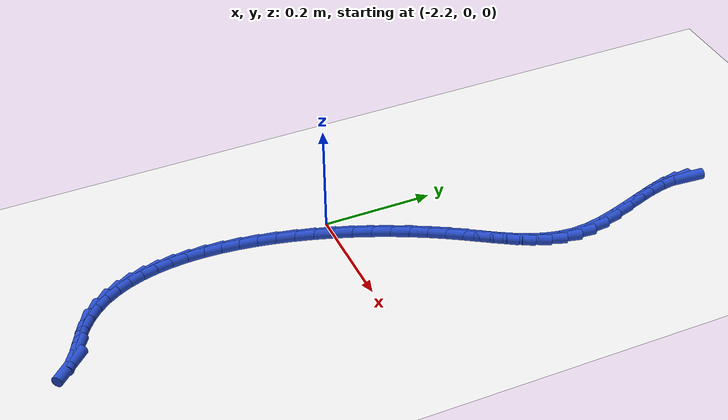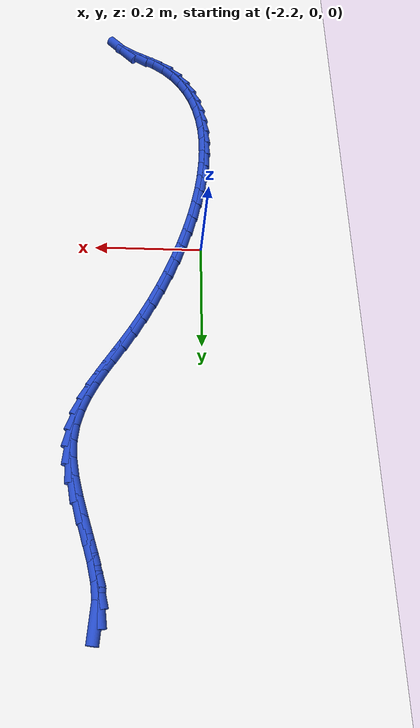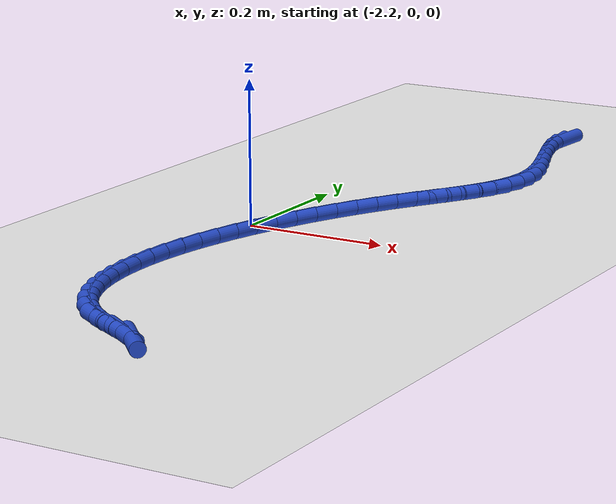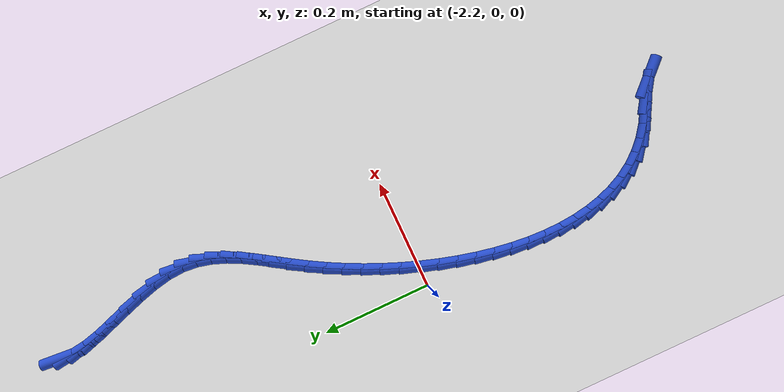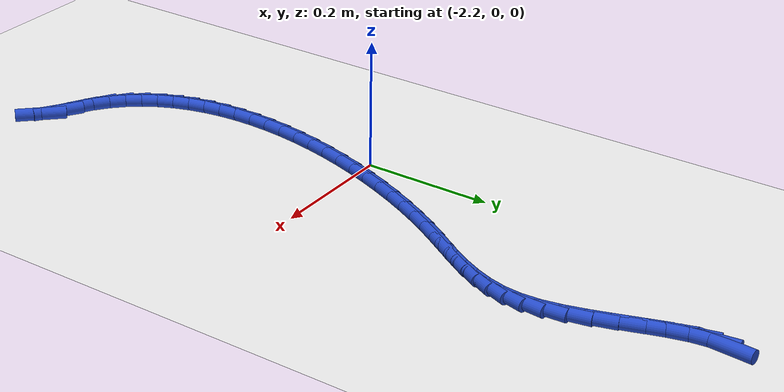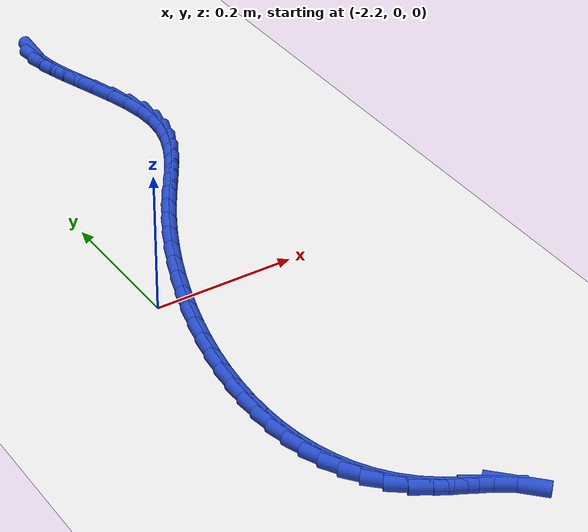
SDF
<sdf version="1.6">
 <world name="default">
  <model name="ground_plane">
   <static>1</static>
   <link name="link">
    <collision name="collision">
     <geometry><plane><normal>0 0 1</normal><size>100 100</size></plane></geometry>
     <surface><friction><ode><mu>100</mu><mu2>50</mu2></ode></friction></surface>
    </collision>
    <visual name="visual">
     <cast_shadows>0</cast_shadows>
     <geometry><plane><normal>0 0 1</normal><size>100 100</size></plane></geometry>
     <material>
      <script><uri>file://media/materials/scripts/gazebo.material</uri><name>Gazebo/WhiteGlow</name></script>
     </material>
    </visual>
   </link>
  </model>
  <model name="line">
   <link name="link_108">
    <pose>-2.0397031572639728 0.6430869934827159 0.01 0 1.57 1.4878936288421638</pose>
    <collision name="collision">
     <geometry><cylinder><radius>0.01</radius><length>0.08</length></cylinder></geometry>
    </collision>
    <visual name="visual">
     <material>
      <script><name>Gazebo/Blue</name><uri>file://media/materials/scripts/gazebo.material</uri></script>
     </material>
     <geometry><cylinder><radius>0.01</radius><length>0.08</length></cylinder></geometry>
    </visual>
   </link>
   <link name="link_109">
    <pose>-2.0415366161967414 0.6210218896333547 0.01 0 1.57 -1.440338103006895</pose>
    <collision name="collision">
     <geometry><cylinder><radius>0.01</radius><length>0.08</length></cylinder></geometry>
    </collision>
    <visual name="visual">
     <material>
      <script><name>Gazebo/Blue</name><uri>file://media/materials/scripts/gazebo.material</uri></script>
     </material>
     <geometry><cylinder><radius>0.01</radius><length>0.08</length></cylinder></geometry>
    </visual>
   </link>
   <link name="link_110">
    <pose>-2.0381831503874146 0.595462599532689 0.01 0 1.57 -1.3223776530969704</pose>
    <collision name="collision">
     <geometry><cylinder><radius>0.01</radius><length>0.08</length></cylinder></geometry>
    </collision>
    <visual name="visual">
     <material>
      <script><name>Gazebo/Blue</name><uri>file://media/materials/scripts/gazebo.material</uri></script>
     </material>
     <geometry><cylinder><radius>0.01</radius><length>0.08</length></cylinder></geometry>
    </visual>
   </link>
   <link name="link_111">
    <pose>-2.0310013892306817 0.5671498465524457 0.01 0 1.57 -1.2626714789542208</pose>
    <collision name="collision">
     <geometry><cylinder><radius>0.01</radius><length>0.08</length></cylinder></geometry>
    </collision>
    <visual name="visual">
     <material>
      <script><name>Gazebo/Blue</name><uri>file://media/materials/scripts/gazebo.material</uri></script>
     </material>
     <geometry><cylinder><radius>0.01</radius><length>0.08</length></cylinder></geometry>
    </visual>
   </link>
   <link name="link_112">
    <pose>-2.0213499621212323 0.5368243540643508 0.01 0 1.57 -1.2425101026168786</pose>
    <collision name="collision">
     <geometry><cylinder><radius>0.01</radius><length>0.08</length></cylinder></geometry>
    </collision>
    <visual name="visual">
     <material>
      <script><name>Gazebo/Blue</name><uri>file://media/materials/scripts/gazebo.material</uri></script>
     </material>
     <geometry><cylinder><radius>0.01</radius><length>0.08</length></cylinder></geometry>
    </visual>
   </link>
   <link name="link_113">
    <pose>-2.0105874984537557 0.5052268454401305 0.01 0 1.57 -1.2545104694375953</pose>
    <collision name="collision">
     <geometry><cylinder><radius>0.01</radius><length>0.08</length></cylinder></geometry>
    </collision>
    <visual name="visual">
     <material>
      <script><name>Gazebo/Blue</name><uri>file://media/materials/scripts/gazebo.material</uri></script>
     </material>
     <geometry><cylinder><radius>0.01</radius><length>0.08</length></cylinder></geometry>
    </visual>
   </link>
   <link name="link_114">
    <pose>-2.0000726276229432 0.47309804405151124 0.01 0 1.57 -1.2986237771977194</pose>
    <collision name="collision">
     <geometry><cylinder><radius>0.01</radius><length>0.08</length></cylinder></geometry>
    </collision>
    <visual name="visual">
     <material>
      <script><name>Gazebo/Blue</name><uri>file://media/materials/scripts/gazebo.material</uri></script>
     </material>
     <geometry><cylinder><radius>0.01</radius><length>0.08</length></cylinder></geometry>
    </visual>
   </link>
   <link name="link_115">
    <pose>-1.9911639790234816 0.44117867327021854 0.01 0 1.57 -1.3811761737822779</pose>
    <collision name="collision">
     <geometry><cylinder><radius>0.01</radius><length>0.08</length></cylinder></geometry>
    </collision>
    <visual name="visual">
     <material>
      <script><name>Gazebo/Blue</name><uri>file://media/materials/scripts/gazebo.material</uri></script>
     </material>
     <geometry><cylinder><radius>0.01</radius><length>0.08</length></cylinder></geometry>
    </visual>
   </link>
   <link name="link_116">
    <pose>-1.9852201820500623 0.41020945646797974 0.01 0 1.57 -1.5132806153723208</pose>
    <collision name="collision">
     <geometry><cylinder><radius>0.01</radius><length>0.08</length></cylinder></geometry>
    </collision>
    <visual name="visual">
     <material>
      <script><name>Gazebo/Blue</name><uri>file://media/materials/scripts/gazebo.material</uri></script>
     </material>
     <geometry><cylinder><radius>0.01</radius><length>0.08</length></cylinder></geometry>
    </visual>
   </link>
   <link name="link_117">
    <pose>-1.9835321368784034 0.38089253877591855 0.01 0 1.57 1.4697247426098066</pose>
    <collision name="collision">
     <geometry><cylinder><radius>0.01</radius><length>0.08</length></cylinder></geometry>
    </collision>
    <visual name="visual">
     <material>
      <script><name>Gazebo/Blue</name><uri>file://media/materials/scripts/gazebo.material</uri></script>
     </material>
     <geometry><cylinder><radius>0.01</radius><length>0.08</length></cylinder></geometry>
    </visual>
   </link>
   <link name="link_118">
    <pose>-1.986327986397958 0.35332472383570934 0.01 0 1.57 1.3217589070407898</pose>
    <collision name="collision">
     <geometry><cylinder><radius>0.01</radius><length>0.08</length></cylinder></geometry>
    </collision>
    <visual name="visual">
     <material>
      <script><name>Gazebo/Blue</name><uri>file://media/materials/scripts/gazebo.material</uri></script>
     </material>
     <geometry><cylinder><radius>0.01</radius><length>0.08</length></cylinder></geometry>
    </visual>
   </link>
   <link name="link_119">
    <pose>-1.9929917748650157 0.32712202072714197 0.01 0 1.57 1.197190108018393</pose>
    <collision name="collision">
     <geometry><cylinder><radius>0.01</radius><length>0.08</length></cylinder></geometry>
    </collision>
    <visual name="visual">
     <material>
      <script><name>Gazebo/Blue</name><uri>file://media/materials/scripts/gazebo.material</uri></script>
     </material>
     <geometry><cylinder><radius>0.01</radius><length>0.08</length></cylinder></geometry>
    </visual>
   </link>
   <link name="link_120">
    <pose>-2.0028842777617877 0.30188718474709497 0.01 0 1.57 1.1022988929126163</pose>
    <collision name="collision">
     <geometry><cylinder><radius>0.01</radius><length>0.08</length></cylinder></geometry>
    </collision>
    <visual name="visual">
     <material>
      <script><name>Gazebo/Blue</name><uri>file://media/materials/scripts/gazebo.material</uri></script>
     </material>
     <geometry><cylinder><radius>0.01</radius><length>0.08</length></cylinder></geometry>
    </visual>
   </link>
   <link name="link_121">
    <pose>-2.0153662705704862 0.27722297119244727 0.01 0 1.57 1.0382874243343039</pose>
    <collision name="collision">
     <geometry><cylinder><radius>0.01</radius><length>0.08</length></cylinder></geometry>
    </collision>
    <visual name="visual">
     <material>
      <script><name>Gazebo/Blue</name><uri>file://media/materials/scripts/gazebo.material</uri></script>
     </material>
     <geometry><cylinder><radius>0.01</radius><length>0.08</length></cylinder></geometry>
    </visual>
   </link>
   <link name="link_122">
    <pose>-2.0297985287733233 0.252732135360078 0.01 0 1.57 1.0036133376715461</pose>
    <collision name="collision">
     <geometry><cylinder><radius>0.01</radius><length>0.08</length></cylinder></geometry>
    </collision>
    <visual name="visual">
     <material>
      <script><name>Gazebo/Blue</name><uri>file://media/materials/scripts/gazebo.material</uri></script>
     </material>
     <geometry><cylinder><radius>0.01</radius><length>0.08</length></cylinder></geometry>
    </visual>
   </link>
   <link name="link_123">
    <pose>-2.0455418278525093 0.22801743254686538 0.01 0 1.57 0.9958976511970311</pose>
    <collision name="collision">
     <geometry><cylinder><radius>0.01</radius><length>0.08</length></cylinder></geometry>
    </collision>
    <visual name="visual">
     <material>
      <script><name>Gazebo/Blue</name><uri>file://media/materials/scripts/gazebo.material</uri></script>
     </material>
     <geometry><cylinder><radius>0.01</radius><length>0.08</length></cylinder></geometry>
    </visual>
   </link>
   <link name="link_124">
    <pose>-2.061956943290256 0.2026816180496895 0.01 0 1.57 1.012830841564968</pose>
    <collision name="collision">
     <geometry><cylinder><radius>0.01</radius><length>0.08</length></cylinder></geometry>
    </collision>
    <visual name="visual">
     <material>
      <script><name>Gazebo/Blue</name><uri>file://media/materials/scripts/gazebo.material</uri></script>
     </material>
     <geometry><cylinder><radius>0.01</radius><length>0.08</length></cylinder></geometry>
    </visual>
   </link>
   <link name="link_125">
    <pose>-2.0784049109043625 0.1763277184126395 0.01 0 1.57 1.0466192407323396</pose>
    <collision name="collision">
     <geometry><cylinder><radius>0.01</radius><length>0.08</length></cylinder></geometry>
    </collision>
    <visual name="visual">
     <material>
      <script><name>Gazebo/Blue</name><uri>file://media/materials/scripts/gazebo.material</uri></script>
     </material>
     <geometry><cylinder><radius>0.01</radius><length>0.08</length></cylinder></geometry>
    </visual>
   </link>
   <link name="link_126">
    <pose>-2.094379058951766 0.14869659748242905 0.01 0 1.57 1.0814410365032605</pose>
    <collision name="collision">
     <geometry><cylinder><radius>0.01</radius><length>0.08</length></cylinder></geometry>
    </collision>
    <visual name="visual">
     <material>
      <script><name>Gazebo/Blue</name><uri>file://media/materials/scripts/gazebo.material</uri></script>
     </material>
     <geometry><cylinder><radius>0.01</radius><length>0.08</length></cylinder></geometry>
    </visual>
   </link>
   <link name="link_127">
    <pose>-2.109719870222998 0.11989082416477786 0.01 0 1.57 1.1153758200336379</pose>
    <collision name="collision">
     <geometry><cylinder><radius>0.01</radius><length>0.08</length></cylinder></geometry>
    </collision>
    <visual name="visual">
     <material>
      <script><name>Gazebo/Blue</name><uri>file://media/materials/scripts/gazebo.material</uri></script>
     </material>
     <geometry><cylinder><radius>0.01</radius><length>0.08</length></cylinder></geometry>
    </visual>
   </link>
   <link name="link_128">
    <pose>-2.124324083599219 0.09007158135604049 0.01 0 1.57 1.1489686682380962</pose>
    <collision name="collision">
     <geometry><cylinder><radius>0.01</radius><length>0.08</length></cylinder></geometry>
    </collision>
    <visual name="visual">
     <material>
      <script><name>Gazebo/Blue</name><uri>file://media/materials/scripts/gazebo.material</uri></script>
     </material>
     <geometry><cylinder><radius>0.01</radius><length>0.08</length></cylinder></geometry>
    </visual>
   </link>
   <link name="link_129">
    <pose>-2.138088437961595 0.05940005195257201 0.01 0 1.57 1.1827216518505648</pose>
    <collision name="collision">
     <geometry><cylinder><radius>0.01</radius><length>0.08</length></cylinder></geometry>
    </collision>
    <visual name="visual">
     <material>
      <script><name>Gazebo/Blue</name><uri>file://media/materials/scripts/gazebo.material</uri></script>
     </material>
     <geometry><cylinder><radius>0.01</radius><length>0.08</length></cylinder></geometry>
    </visual>
   </link>
   <link name="link_130">
    <pose>-2.150909672191288 0.028037418850727375 0.01 0 1.57 1.217116890093893</pose>
    <collision name="collision">
     <geometry><cylinder><radius>0.01</radius><length>0.08</length></cylinder></geometry>
    </collision>
    <visual name="visual">
     <material>
      <script><name>Gazebo/Blue</name><uri>file://media/materials/scripts/gazebo.material</uri></script>
     </material>
     <geometry><cylinder><radius>0.01</radius><length>0.08</length></cylinder></geometry>
    </visual>
   </link>
   <link name="link_131">
    <pose>-2.16268452516946 -0.003855135053138438 0.01 0 1.57 1.2526363283092934</pose>
    <collision name="collision">
     <geometry><cylinder><radius>0.01</radius><length>0.08</length></cylinder></geometry>
    </collision>
    <visual name="visual">
     <material>
      <script><name>Gazebo/Blue</name><uri>file://media/materials/scripts/gazebo.material</uri></script>
     </material>
     <geometry><cylinder><radius>0.01</radius><length>0.08</length></cylinder></geometry>
    </visual>
   </link>
   <link name="link_132">
    <pose>-2.173309735777274 -0.03611642686267039 0.01 0 1.57 1.2897796660287975</pose>
    <collision name="collision">
     <geometry><cylinder><radius>0.01</radius><length>0.08</length></cylinder></geometry>
    </collision>
    <visual name="visual">
     <material>
      <script><name>Gazebo/Blue</name><uri>file://media/materials/scripts/gazebo.material</uri></script>
     </material>
     <geometry><cylinder><radius>0.01</radius><length>0.08</length></cylinder></geometry>
    </visual>
   </link>
   <link name="link_133">
    <pose>-2.1826820428958937 -0.06858527368151443 0.01 0 1.57 1.3290814022328998</pose>
    <collision name="collision">
     <geometry><cylinder><radius>0.01</radius><length>0.08</length></cylinder></geometry>
    </collision>
    <visual name="visual">
     <material>
      <script><name>Gazebo/Blue</name><uri>file://media/materials/scripts/gazebo.material</uri></script>
     </material>
     <geometry><cylinder><radius>0.01</radius><length>0.08</length></cylinder></geometry>
    </visual>
   </link>
   <link name="link_134">
    <pose>-2.1906981854064815 -0.1011004926133137 0.01 0 1.57 1.3711275233842775</pose>
    <collision name="collision">
     <geometry><cylinder><radius>0.01</radius><length>0.08</length></cylinder></geometry>
    </collision>
    <visual name="visual">
     <material>
      <script><name>Gazebo/Blue</name><uri>file://media/materials/scripts/gazebo.material</uri></script>
     </material>
     <geometry><cylinder><radius>0.01</radius><length>0.08</length></cylinder></geometry>
    </visual>
   </link>
   <link name="link_135">
    <pose>-2.1972549021901995 -0.13350090076171411 0.01 0 1.57 1.4165718086938301</pose>
    <collision name="collision">
     <geometry><cylinder><radius>0.01</radius><length>0.08</length></cylinder></geometry>
    </collision>
    <visual name="visual">
     <material>
      <script><name>Gazebo/Blue</name><uri>file://media/materials/scripts/gazebo.material</uri></script>
     </material>
     <geometry><cylinder><radius>0.01</radius><length>0.08</length></cylinder></geometry>
    </visual>
   </link>
   <link name="link_136">
    <pose>-2.202248932128212 -0.16562531523036067 0.01 0 1.57 1.4661508898205307</pose>
    <collision name="collision">
     <geometry><cylinder><radius>0.01</radius><length>0.08</length></cylinder></geometry>
    </collision>
    <visual name="visual">
     <material>
      <script><name>Gazebo/Blue</name><uri>file://media/materials/scripts/gazebo.material</uri></script>
     </material>
     <geometry><cylinder><radius>0.01</radius><length>0.08</length></cylinder></geometry>
    </visual>
   </link>
   <link name="link_137">
    <pose>-2.205577014101681 -0.19731255312289844 0.01 0 1.57 1.520695825822472</pose>
    <collision name="collision">
     <geometry><cylinder><radius>0.01</radius><length>0.08</length></cylinder></geometry>
    </collision>
    <visual name="visual">
     <material>
      <script><name>Gazebo/Blue</name><uri>file://media/materials/scripts/gazebo.material</uri></script>
     </material>
     <geometry><cylinder><radius>0.01</radius><length>0.08</length></cylinder></geometry>
    </visual>
   </link>
   <link name="link_138">
    <pose>-2.2071358869917708 -0.22840143154297232 0.01 0 1.57 -1.5604569597629774</pose>
    <collision name="collision">
     <geometry><cylinder><radius>0.01</radius><length>0.08</length></cylinder></geometry>
    </collision>
    <visual name="visual">
     <material>
      <script><name>Gazebo/Blue</name><uri>file://media/materials/scripts/gazebo.material</uri></script>
     </material>
     <geometry><cylinder><radius>0.01</radius><length>0.08</length></cylinder></geometry>
    </visual>
   </link>
   <link name="link_139">
    <pose>-2.206822289679643 -0.2587307675942275 0.01 0 1.57 -1.4931074823712431</pose>
    <collision name="collision">
     <geometry><cylinder><radius>0.01</radius><length>0.08</length></cylinder></geometry>
    </collision>
    <visual name="visual">
     <material>
      <script><name>Gazebo/Blue</name><uri>file://media/materials/scripts/gazebo.material</uri></script>
     </material>
     <geometry><cylinder><radius>0.01</radius><length>0.08</length></cylinder></geometry>
    </visual>
   </link>
   <link name="link_140">
    <pose>-2.2045329610464597 -0.28813937838030956 0.01 0 1.57 -1.417789506370488</pose>
    <collision name="collision">
     <geometry><cylinder><radius>0.01</radius><length>0.08</length></cylinder></geometry>
    </collision>
    <visual name="visual">
     <material>
      <script><name>Gazebo/Blue</name><uri>file://media/materials/scripts/gazebo.material</uri></script>
     </material>
     <geometry><cylinder><radius>0.01</radius><length>0.08</length></cylinder></geometry>
    </visual>
   </link>
   <link name="link_141">
    <pose>-2.2001646399733845 -0.3164660810048619 0.01 0 1.57 -1.3334887747081487</pose>
    <collision name="collision">
     <geometry><cylinder><radius>0.01</radius><length>0.08</length></cylinder></geometry>
    </collision>
    <visual name="visual">
     <material>
      <script><name>Gazebo/Blue</name><uri>file://media/materials/scripts/gazebo.material</uri></script>
     </material>
     <geometry><cylinder><radius>0.01</radius><length>0.08</length></cylinder></geometry>
    </visual>
   </link>
   <link name="link_142">
    <pose>-2.193614065341582 -0.34354969257153045 0.01 0 1.57 -1.2393932164998347</pose>
    <collision name="collision">
     <geometry><cylinder><radius>0.01</radius><length>0.08</length></cylinder></geometry>
    </collision>
    <visual name="visual">
     <material>
      <script><name>Gazebo/Blue</name><uri>file://media/materials/scripts/gazebo.material</uri></script>
     </material>
     <geometry><cylinder><radius>0.01</radius><length>0.08</length></cylinder></geometry>
    </visual>
   </link>
   <link name="link_143">
    <pose>-2.1847779760322132 -0.36922903018396025 0.01 0 1.57 -1.1351326139485813</pose>
    <collision name="collision">
     <geometry><cylinder><radius>0.01</radius><length>0.08</length></cylinder></geometry>
    </collision>
    <visual name="visual">
     <material>
      <script><name>Gazebo/Blue</name><uri>file://media/materials/scripts/gazebo.material</uri></script>
     </material>
     <geometry><cylinder><radius>0.01</radius><length>0.08</length></cylinder></geometry>
    </visual>
   </link>
   <link name="link_144">
    <pose>-2.1735531109264414 -0.3933429109457962 0.01 0 1.57 -1.021083111692221</pose>
    <collision name="collision">
     <geometry><cylinder><radius>0.01</radius><length>0.08</length></cylinder></geometry>
    </collision>
    <visual name="visual">
     <material>
      <script><name>Gazebo/Blue</name><uri>file://media/materials/scripts/gazebo.material</uri></script>
     </material>
     <geometry><cylinder><radius>0.01</radius><length>0.08</length></cylinder></geometry>
    </visual>
   </link>
   <link name="link_145">
    <pose>-2.1598362089054293 -0.41573015196068325 0.01 0 1.57 -0.8986585614307075</pose>
    <collision name="collision">
     <geometry><cylinder><radius>0.01</radius><length>0.08</length></cylinder></geometry>
    </collision>
    <visual name="visual">
     <material>
      <script><name>Gazebo/Blue</name><uri>file://media/materials/scripts/gazebo.material</uri></script>
     </material>
     <geometry><cylinder><radius>0.01</radius><length>0.08</length></cylinder></geometry>
    </visual>
   </link>
   <link name="link_146">
    <pose>-2.1435240088503402 -0.4362295703322666 0.01 0 1.57 -0.7704412210517709</pose>
    <collision name="collision">
     <geometry><cylinder><radius>0.01</radius><length>0.08</length></cylinder></geometry>
    </collision>
    <visual name="visual">
     <material>
      <script><name>Gazebo/Blue</name><uri>file://media/materials/scripts/gazebo.material</uri></script>
     </material>
     <geometry><cylinder><radius>0.01</radius><length>0.08</length></cylinder></geometry>
    </visual>
   </link>
   <link name="link_147">
    <pose>-2.1245132496423373 -0.4546799831641911 0.01 0 1.57 -0.6399941923772516</pose>
    <collision name="collision">
     <geometry><cylinder><radius>0.01</radius><length>0.08</length></cylinder></geometry>
    </collision>
    <visual name="visual">
     <material>
      <script><name>Gazebo/Blue</name><uri>file://media/materials/scripts/gazebo.material</uri></script>
     </material>
     <geometry><cylinder><radius>0.01</radius><length>0.08</length></cylinder></geometry>
    </visual>
   </link>
   <link name="link_148">
    <pose>-2.1027006701625828 -0.4709202075601017 0.01 0 1.57 -0.5199217862065371</pose>
    <collision name="collision">
     <geometry><cylinder><radius>0.01</radius><length>0.08</length></cylinder></geometry>
    </collision>
    <visual name="visual">
     <material>
      <script><name>Gazebo/Blue</name><uri>file://media/materials/scripts/gazebo.material</uri></script>
     </material>
     <geometry><cylinder><radius>0.01</radius><length>0.08</length></cylinder></geometry>
    </visual>
   </link>
   <link name="link_149">
    <pose>-2.0781854746722384 -0.4849541268623484 0.01 0 1.57 -0.48635590580717925</pose>
    <collision name="collision">
     <geometry><cylinder><radius>0.01</radius><length>0.08</length></cylinder></geometry>
    </collision>
    <visual name="visual">
     <material>
      <script><name>Gazebo/Blue</name><uri>file://media/materials/scripts/gazebo.material</uri></script>
     </material>
     <geometry><cylinder><radius>0.01</radius><length>0.08</length></cylinder></geometry>
    </visual>
   </link>
   <link name="link_150">
    <pose>-2.052931865974453 -0.49830612285363596 0.01 0 1.57 -0.5778991033997775</pose>
    <collision name="collision">
     <geometry><cylinder><radius>0.01</radius><length>0.08</length></cylinder></geometry>
    </collision>
    <visual name="visual">
     <material>
      <script><name>Gazebo/Blue</name><uri>file://media/materials/scripts/gazebo.material</uri></script>
     </material>
     <geometry><cylinder><radius>0.01</radius><length>0.08</length></cylinder></geometry>
    </visual>
   </link>
   <link name="link_151">
    <pose>-2.0299097125623584 -0.5133204777502188 0.01 0 1.57 -0.7995263000087822</pose>
    <collision name="collision">
     <geometry><cylinder><radius>0.01</radius><length>0.08</length></cylinder></geometry>
    </collision>
    <visual name="visual">
     <material>
      <script><name>Gazebo/Blue</name><uri>file://media/materials/scripts/gazebo.material</uri></script>
     </material>
     <geometry><cylinder><radius>0.01</radius><length>0.08</length></cylinder></geometry>
    </visual>
   </link>
  </model>
 </world>
</sdf>
